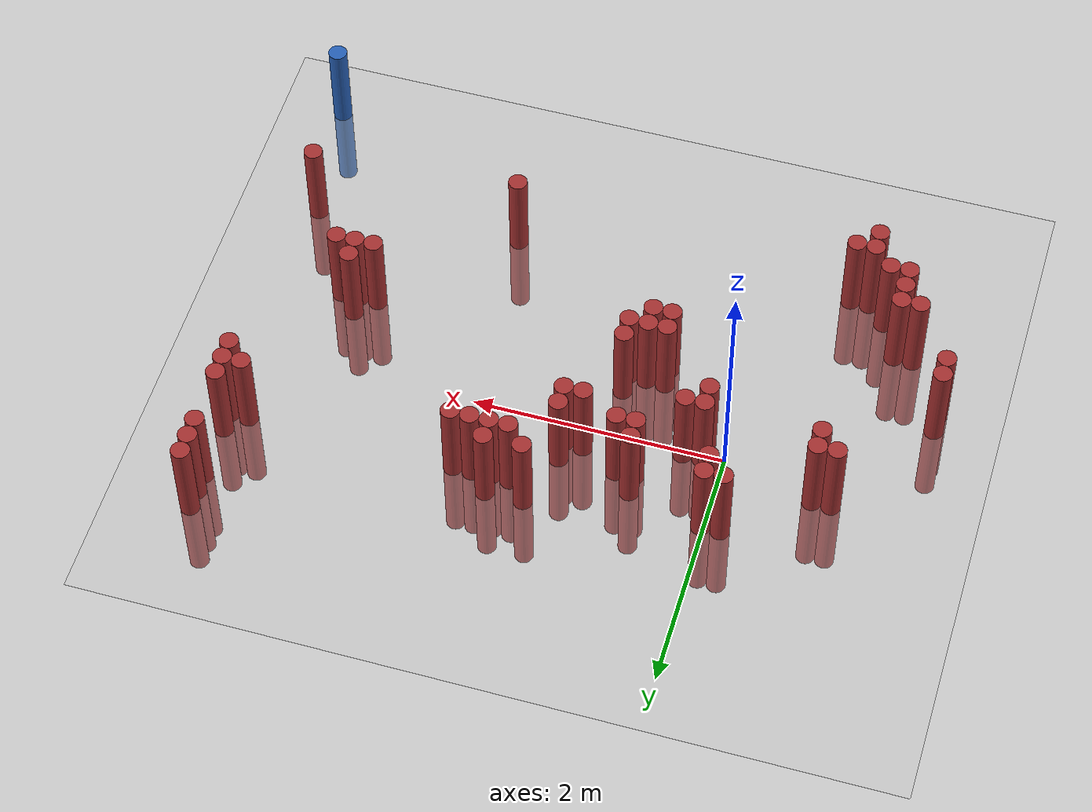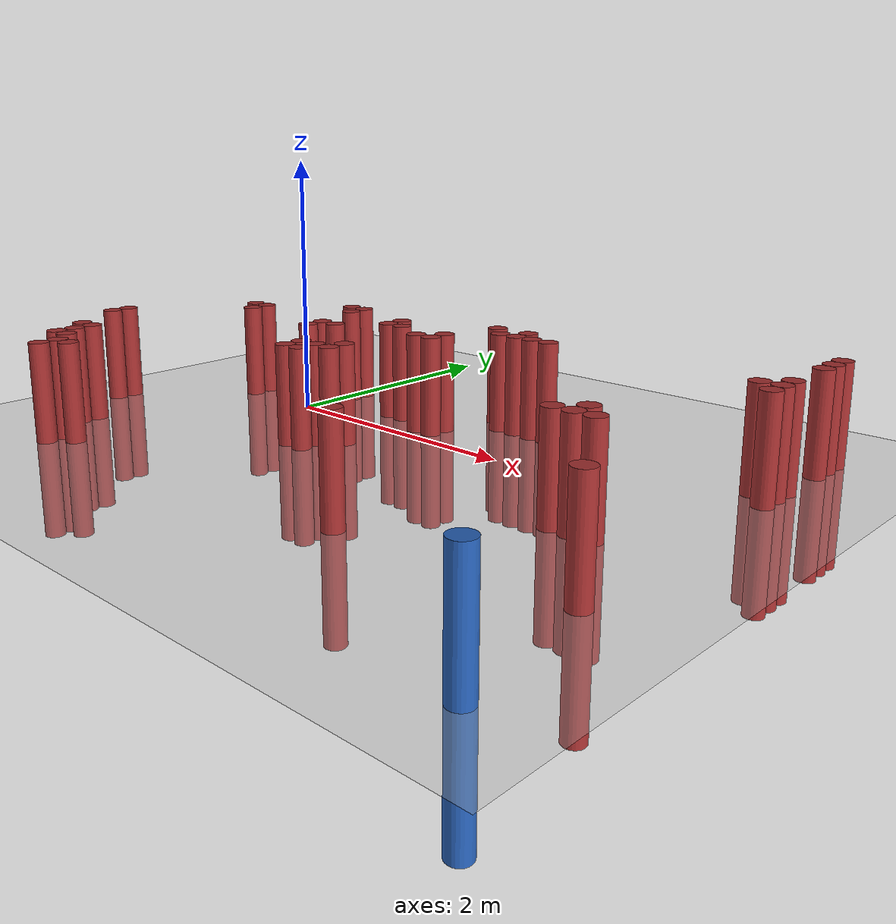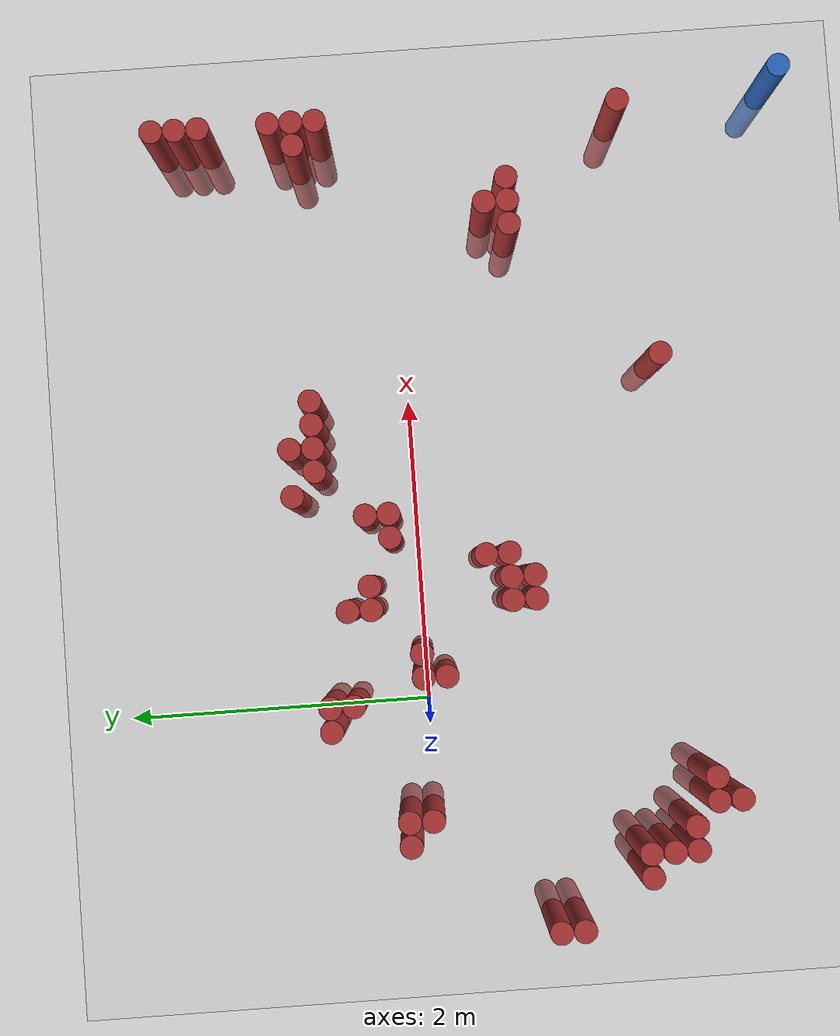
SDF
<sdf version="1.6">
 <world name="default">
  <model name="ground_plane">
   <static>1</static>
   <link name="link">
    <collision name="collision">
     <geometry><plane><normal>0 0 1</normal><size>100 100</size></plane></geometry>
     <surface><friction><ode><mu>100</mu><mu2>50</mu2></ode></friction></surface>
    </collision>
    <visual name="visual">
     <cast_shadows>0</cast_shadows>
     <geometry><plane><normal>0 0 1</normal><size>100 100</size></plane></geometry>
     <material>
      <script><uri>file://media/materials/scripts/gazebo.material</uri><name>Gazebo/Grey</name></script>
     </material>
    </visual>
   </link>
  </model>
  <model name="unit_cylinder_80">
   <static>1</static>
   <pose>3.925000 -2.525000 0.000000 0.000000 0.000000 0.000000</pose>
   <link name="link">
    <inertial>
     <mass>1</mass>
     <inertia><ixx>0.145833</ixx><ixy>0</ixy><ixz>0</ixz><iyy>0.145833</iyy><iyz>0</iyz><izz>0.125</izz></inertia>
    </inertial>
    <collision name="collision">
     <geometry><cylinder><radius>0.075000</radius><length>1.5</length></cylinder></geometry>
    </collision>
    <visual name="visual">
     <geometry><cylinder><radius>0.075000</radius><length>1.5</length></cylinder></geometry>
     <material>
      <ambient>0.152000 0.379000 0.720000 1</ambient>
      <diffuse>0.152000 0.379000 0.720000 1</diffuse>
     </material>
     <material>
      <script><name>Gazebo/Grey</name><uri>file://media/materials/scripts/gazebo.material</uri></script>
     </material>
    </visual>
   </link>
  </model>
  <model name="unit_cylinder_329">
   <static>1</static>
   <pose>-1.475000 -0.875000 0.000000 0.000000 0.000000 0.000000</pose>
   <link name="link">
    <inertial>
     <mass>1</mass>
     <inertia><ixx>0.145833</ixx><ixy>0</ixy><ixz>0</ixz><iyy>0.145833</iyy><iyz>0</iyz><izz>0.125</izz></inertia>
    </inertial>
    <collision name="collision">
     <geometry><cylinder><radius>0.075000</radius><length>1.5</length></cylinder></geometry>
    </collision>
    <visual name="visual">
     <geometry><cylinder><radius>0.075000</radius><length>1.5</length></cylinder></geometry>
     <material>
      <ambient>0.648000 0.192000 0.192000 1</ambient>
      <diffuse>0.648000 0.192000 0.192000 1</diffuse>
     </material>
     <material>
      <script><name>Gazebo/Grey</name><uri>file://media/materials/scripts/gazebo.material</uri></script>
     </material>
    </visual>
   </link>
  </model>
  <model name="unit_cylinder_330">
   <static>1</static>
   <pose>-1.475000 -0.725000 0.000000 0.000000 0.000000 0.000000</pose>
   <link name="link">
    <inertial>
     <mass>1</mass>
     <inertia><ixx>0.145833</ixx><ixy>0</ixy><ixz>0</ixz><iyy>0.145833</iyy><iyz>0</iyz><izz>0.125</izz></inertia>
    </inertial>
    <collision name="collision">
     <geometry><cylinder><radius>0.075000</radius><length>1.5</length></cylinder></geometry>
    </collision>
    <visual name="visual">
     <geometry><cylinder><radius>0.075000</radius><length>1.5</length></cylinder></geometry>
     <material>
      <ambient>0.648000 0.192000 0.192000 1</ambient>
      <diffuse>0.648000 0.192000 0.192000 1</diffuse>
     </material>
     <material>
      <script><name>Gazebo/Grey</name><uri>file://media/materials/scripts/gazebo.material</uri></script>
     </material>
    </visual>
   </link>
  </model>
  <model name="unit_cylinder_336">
   <static>1</static>
   <pose>-1.175000 -1.325000 0.000000 0.000000 0.000000 0.000000</pose>
   <link name="link">
    <inertial>
     <mass>1</mass>
     <inertia><ixx>0.145833</ixx><ixy>0</ixy><ixz>0</ixz><iyy>0.145833</iyy><iyz>0</iyz><izz>0.125</izz></inertia>
    </inertial>
    <collision name="collision">
     <geometry><cylinder><radius>0.075000</radius><length>1.5</length></cylinder></geometry>
    </collision>
    <visual name="visual">
     <geometry><cylinder><radius>0.075000</radius><length>1.5</length></cylinder></geometry>
     <material>
      <ambient>0.648000 0.192000 0.192000 1</ambient>
      <diffuse>0.648000 0.192000 0.192000 1</diffuse>
     </material>
     <material>
      <script><name>Gazebo/Grey</name><uri>file://media/materials/scripts/gazebo.material</uri></script>
     </material>
    </visual>
   </link>
  </model>
  <model name="unit_cylinder_337">
   <static>1</static>
   <pose>-1.025000 -1.625000 0.000000 0.000000 0.000000 0.000000</pose>
   <link name="link">
    <inertial>
     <mass>1</mass>
     <inertia><ixx>0.145833</ixx><ixy>0</ixy><ixz>0</ixz><iyy>0.145833</iyy><iyz>0</iyz><izz>0.125</izz></inertia>
    </inertial>
    <collision name="collision">
     <geometry><cylinder><radius>0.075000</radius><length>1.5</length></cylinder></geometry>
    </collision>
    <visual name="visual">
     <geometry><cylinder><radius>0.075000</radius><length>1.5</length></cylinder></geometry>
     <material>
      <ambient>0.648000 0.192000 0.192000 1</ambient>
      <diffuse>0.648000 0.192000 0.192000 1</diffuse>
     </material>
     <material>
      <script><name>Gazebo/Grey</name><uri>file://media/materials/scripts/gazebo.material</uri></script>
     </material>
    </visual>
   </link>
  </model>
  <model name="unit_cylinder_338">
   <static>1</static>
   <pose>-1.025000 -1.475000 0.000000 0.000000 0.000000 0.000000</pose>
   <link name="link">
    <inertial>
     <mass>1</mass>
     <inertia><ixx>0.145833</ixx><ixy>0</ixy><ixz>0</ixz><iyy>0.145833</iyy><iyz>0</iyz><izz>0.125</izz></inertia>
    </inertial>
    <collision name="collision">
     <geometry><cylinder><radius>0.075000</radius><length>1.5</length></cylinder></geometry>
    </collision>
    <visual name="visual">
     <geometry><cylinder><radius>0.075000</radius><length>1.5</length></cylinder></geometry>
     <material>
      <ambient>0.648000 0.192000 0.192000 1</ambient>
      <diffuse>0.648000 0.192000 0.192000 1</diffuse>
     </material>
     <material>
      <script><name>Gazebo/Grey</name><uri>file://media/materials/scripts/gazebo.material</uri></script>
     </material>
    </visual>
   </link>
  </model>
  <model name="unit_cylinder_339">
   <static>1</static>
   <pose>-1.025000 -1.325000 0.000000 0.000000 0.000000 0.000000</pose>
   <link name="link">
    <inertial>
     <mass>1</mass>
     <inertia><ixx>0.145833</ixx><ixy>0</ixy><ixz>0</ixz><iyy>0.145833</iyy><iyz>0</iyz><izz>0.125</izz></inertia>
    </inertial>
    <collision name="collision">
     <geometry><cylinder><radius>0.075000</radius><length>1.5</length></cylinder></geometry>
    </collision>
    <visual name="visual">
     <geometry><cylinder><radius>0.075000</radius><length>1.5</length></cylinder></geometry>
     <material>
      <ambient>0.648000 0.192000 0.192000 1</ambient>
      <diffuse>0.648000 0.192000 0.192000 1</diffuse>
     </material>
     <material>
      <script><name>Gazebo/Grey</name><uri>file://media/materials/scripts/gazebo.material</uri></script>
     </material>
    </visual>
   </link>
  </model>
  <model name="unit_cylinder_340">
   <static>1</static>
   <pose>-0.875000 -1.625000 0.000000 0.000000 0.000000 0.000000</pose>
   <link name="link">
    <inertial>
     <mass>1</mass>
     <inertia><ixx>0.145833</ixx><ixy>0</ixy><ixz>0</ixz><iyy>0.145833</iyy><iyz>0</iyz><izz>0.125</izz></inertia>
    </inertial>
    <collision name="collision">
     <geometry><cylinder><radius>0.075000</radius><length>1.5</length></cylinder></geometry>
    </collision>
    <visual name="visual">
     <geometry><cylinder><radius>0.075000</radius><length>1.5</length></cylinder></geometry>
     <material>
      <ambient>0.648000 0.192000 0.192000 1</ambient>
      <diffuse>0.648000 0.192000 0.192000 1</diffuse>
     </material>
     <material>
      <script><name>Gazebo/Grey</name><uri>file://media/materials/scripts/gazebo.material</uri></script>
     </material>
    </visual>
   </link>
  </model>
  <model name="unit_cylinder_341">
   <static>1</static>
   <pose>-0.875000 0.175000 0.000000 0.000000 0.000000 0.000000</pose>
   <link name="link">
    <inertial>
     <mass>1</mass>
     <inertia><ixx>0.145833</ixx><ixy>0</ixy><ixz>0</ixz><iyy>0.145833</iyy><iyz>0</iyz><izz>0.125</izz></inertia>
    </inertial>
    <collision name="collision">
     <geometry><cylinder><radius>0.075000</radius><length>1.5</length></cylinder></geometry>
    </collision>
    <visual name="visual">
     <geometry><cylinder><radius>0.075000</radius><length>1.5</length></cylinder></geometry>
     <material>
      <ambient>0.648000 0.192000 0.192000 1</ambient>
      <diffuse>0.648000 0.192000 0.192000 1</diffuse>
     </material>
     <material>
      <script><name>Gazebo/Grey</name><uri>file://media/materials/scripts/gazebo.material</uri></script>
     </material>
    </visual>
   </link>
  </model>
  <model name="unit_cylinder_342">
   <static>1</static>
   <pose>-0.725000 -1.925000 0.000000 0.000000 0.000000 0.000000</pose>
   <link name="link">
    <inertial>
     <mass>1</mass>
     <inertia><ixx>0.145833</ixx><ixy>0</ixy><ixz>0</ixz><iyy>0.145833</iyy><iyz>0</iyz><izz>0.125</izz></inertia>
    </inertial>
    <collision name="collision">
     <geometry><cylinder><radius>0.075000</radius><length>1.5</length></cylinder></geometry>
    </collision>
    <visual name="visual">
     <geometry><cylinder><radius>0.075000</radius><length>1.5</length></cylinder></geometry>
     <material>
      <ambient>0.648000 0.192000 0.192000 1</ambient>
      <diffuse>0.648000 0.192000 0.192000 1</diffuse>
     </material>
     <material>
      <script><name>Gazebo/Grey</name><uri>file://media/materials/scripts/gazebo.material</uri></script>
     </material>
    </visual>
   </link>
  </model>
  <model name="unit_cylinder_343">
   <static>1</static>
   <pose>-0.725000 -1.775000 0.000000 0.000000 0.000000 0.000000</pose>
   <link name="link">
    <inertial>
     <mass>1</mass>
     <inertia><ixx>0.145833</ixx><ixy>0</ixy><ixz>0</ixz><iyy>0.145833</iyy><iyz>0</iyz><izz>0.125</izz></inertia>
    </inertial>
    <collision name="collision">
     <geometry><cylinder><radius>0.075000</radius><length>1.5</length></cylinder></geometry>
    </collision>
    <visual name="visual">
     <geometry><cylinder><radius>0.075000</radius><length>1.5</length></cylinder></geometry>
     <material>
      <ambient>0.648000 0.192000 0.192000 1</ambient>
      <diffuse>0.648000 0.192000 0.192000 1</diffuse>
     </material>
     <material>
      <script><name>Gazebo/Grey</name><uri>file://media/materials/scripts/gazebo.material</uri></script>
     </material>
    </visual>
   </link>
  </model>
  <model name="unit_cylinder_344">
   <static>1</static>
   <pose>-0.725000 0.025000 0.000000 0.000000 0.000000 0.000000</pose>
   <link name="link">
    <inertial>
     <mass>1</mass>
     <inertia><ixx>0.145833</ixx><ixy>0</ixy><ixz>0</ixz><iyy>0.145833</iyy><iyz>0</iyz><izz>0.125</izz></inertia>
    </inertial>
    <collision name="collision">
     <geometry><cylinder><radius>0.075000</radius><length>1.5</length></cylinder></geometry>
    </collision>
    <visual name="visual">
     <geometry><cylinder><radius>0.075000</radius><length>1.5</length></cylinder></geometry>
     <material>
      <ambient>0.648000 0.192000 0.192000 1</ambient>
      <diffuse>0.648000 0.192000 0.192000 1</diffuse>
     </material>
     <material>
      <script><name>Gazebo/Grey</name><uri>file://media/materials/scripts/gazebo.material</uri></script>
     </material>
    </visual>
   </link>
  </model>
  <model name="unit_cylinder_345">
   <static>1</static>
   <pose>-0.725000 0.175000 0.000000 0.000000 0.000000 0.000000</pose>
   <link name="link">
    <inertial>
     <mass>1</mass>
     <inertia><ixx>0.145833</ixx><ixy>0</ixy><ixz>0</ixz><iyy>0.145833</iyy><iyz>0</iyz><izz>0.125</izz></inertia>
    </inertial>
    <collision name="collision">
     <geometry><cylinder><radius>0.075000</radius><length>1.5</length></cylinder></geometry>
    </collision>
    <visual name="visual">
     <geometry><cylinder><radius>0.075000</radius><length>1.5</length></cylinder></geometry>
     <material>
      <ambient>0.648000 0.192000 0.192000 1</ambient>
      <diffuse>0.648000 0.192000 0.192000 1</diffuse>
     </material>
     <material>
      <script><name>Gazebo/Grey</name><uri>file://media/materials/scripts/gazebo.material</uri></script>
     </material>
    </visual>
   </link>
  </model>
  <model name="unit_cylinder_346">
   <static>1</static>
   <pose>-0.575000 -1.775000 0.000000 0.000000 0.000000 0.000000</pose>
   <link name="link">
    <inertial>
     <mass>1</mass>
     <inertia><ixx>0.145833</ixx><ixy>0</ixy><ixz>0</ixz><iyy>0.145833</iyy><iyz>0</iyz><izz>0.125</izz></inertia>
    </inertial>
    <collision name="collision">
     <geometry><cylinder><radius>0.075000</radius><length>1.5</length></cylinder></geometry>
    </collision>
    <visual name="visual">
     <geometry><cylinder><radius>0.075000</radius><length>1.5</length></cylinder></geometry>
     <material>
      <ambient>0.648000 0.192000 0.192000 1</ambient>
      <diffuse>0.648000 0.192000 0.192000 1</diffuse>
     </material>
     <material>
      <script><name>Gazebo/Grey</name><uri>file://media/materials/scripts/gazebo.material</uri></script>
     </material>
    </visual>
   </link>
  </model>
  <model name="unit_cylinder_356">
   <static>1</static>
   <pose>-0.125000 0.625000 0.000000 0.000000 0.000000 0.000000</pose>
   <link name="link">
    <inertial>
     <mass>1</mass>
     <inertia><ixx>0.145833</ixx><ixy>0</ixy><ixz>0</ixz><iyy>0.145833</iyy><iyz>0</iyz><izz>0.125</izz></inertia>
    </inertial>
    <collision name="collision">
     <geometry><cylinder><radius>0.075000</radius><length>1.5</length></cylinder></geometry>
    </collision>
    <visual name="visual">
     <geometry><cylinder><radius>0.075000</radius><length>1.5</length></cylinder></geometry>
     <material>
      <ambient>0.648000 0.192000 0.192000 1</ambient>
      <diffuse>0.648000 0.192000 0.192000 1</diffuse>
     </material>
     <material>
      <script><name>Gazebo/Grey</name><uri>file://media/materials/scripts/gazebo.material</uri></script>
     </material>
    </visual>
   </link>
  </model>
  <model name="unit_cylinder_361">
   <static>1</static>
   <pose>0.025000 0.475000 0.000000 0.000000 0.000000 0.000000</pose>
   <link name="link">
    <inertial>
     <mass>1</mass>
     <inertia><ixx>0.145833</ixx><ixy>0</ixy><ixz>0</ixz><iyy>0.145833</iyy><iyz>0</iyz><izz>0.125</izz></inertia>
    </inertial>
    <collision name="collision">
     <geometry><cylinder><radius>0.075000</radius><length>1.5</length></cylinder></geometry>
    </collision>
    <visual name="visual">
     <geometry><cylinder><radius>0.075000</radius><length>1.5</length></cylinder></geometry>
     <material>
      <ambient>0.648000 0.192000 0.192000 1</ambient>
      <diffuse>0.648000 0.192000 0.192000 1</diffuse>
     </material>
     <material>
      <script><name>Gazebo/Grey</name><uri>file://media/materials/scripts/gazebo.material</uri></script>
     </material>
    </visual>
   </link>
  </model>
  <model name="unit_cylinder_362">
   <static>1</static>
   <pose>0.025000 0.625000 0.000000 0.000000 0.000000 0.000000</pose>
   <link name="link">
    <inertial>
     <mass>1</mass>
     <inertia><ixx>0.145833</ixx><ixy>0</ixy><ixz>0</ixz><iyy>0.145833</iyy><iyz>0</iyz><izz>0.125</izz></inertia>
    </inertial>
    <collision name="collision">
     <geometry><cylinder><radius>0.075000</radius><length>1.5</length></cylinder></geometry>
    </collision>
    <visual name="visual">
     <geometry><cylinder><radius>0.075000</radius><length>1.5</length></cylinder></geometry>
     <material>
      <ambient>0.648000 0.192000 0.192000 1</ambient>
      <diffuse>0.648000 0.192000 0.192000 1</diffuse>
     </material>
     <material>
      <script><name>Gazebo/Grey</name><uri>file://media/materials/scripts/gazebo.material</uri></script>
     </material>
    </visual>
   </link>
  </model>
  <model name="unit_cylinder_367">
   <static>1</static>
   <pose>0.175000 -0.125000 0.000000 0.000000 0.000000 0.000000</pose>
   <link name="link">
    <inertial>
     <mass>1</mass>
     <inertia><ixx>0.145833</ixx><ixy>0</ixy><ixz>0</ixz><iyy>0.145833</iyy><iyz>0</iyz><izz>0.125</izz></inertia>
    </inertial>
    <collision name="collision">
     <geometry><cylinder><radius>0.075000</radius><length>1.5</length></cylinder></geometry>
    </collision>
    <visual name="visual">
     <geometry><cylinder><radius>0.075000</radius><length>1.5</length></cylinder></geometry>
     <material>
      <ambient>0.648000 0.192000 0.192000 1</ambient>
      <diffuse>0.648000 0.192000 0.192000 1</diffuse>
     </material>
     <material>
      <script><name>Gazebo/Grey</name><uri>file://media/materials/scripts/gazebo.material</uri></script>
     </material>
    </visual>
   </link>
  </model>
  <model name="unit_cylinder_368">
   <static>1</static>
   <pose>0.175000 0.025000 0.000000 0.000000 0.000000 0.000000</pose>
   <link name="link">
    <inertial>
     <mass>1</mass>
     <inertia><ixx>0.145833</ixx><ixy>0</ixy><ixz>0</ixz><iyy>0.145833</iyy><iyz>0</iyz><izz>0.125</izz></inertia>
    </inertial>
    <collision name="collision">
     <geometry><cylinder><radius>0.075000</radius><length>1.5</length></cylinder></geometry>
    </collision>
    <visual name="visual">
     <geometry><cylinder><radius>0.075000</radius><length>1.5</length></cylinder></geometry>
     <material>
      <ambient>0.648000 0.192000 0.192000 1</ambient>
      <diffuse>0.648000 0.192000 0.192000 1</diffuse>
     </material>
     <material>
      <script><name>Gazebo/Grey</name><uri>file://media/materials/scripts/gazebo.material</uri></script>
     </material>
    </visual>
   </link>
  </model>
  <model name="unit_cylinder_373">
   <static>1</static>
   <pose>0.325000 0.025000 0.000000 0.000000 0.000000 0.000000</pose>
   <link name="link">
    <inertial>
     <mass>1</mass>
     <inertia><ixx>0.145833</ixx><ixy>0</ixy><ixz>0</ixz><iyy>0.145833</iyy><iyz>0</iyz><izz>0.125</izz></inertia>
    </inertial>
    <collision name="collision">
     <geometry><cylinder><radius>0.075000</radius><length>1.5</length></cylinder></geometry>
    </collision>
    <visual name="visual">
     <geometry><cylinder><radius>0.075000</radius><length>1.5</length></cylinder></geometry>
     <material>
      <ambient>0.648000 0.192000 0.192000 1</ambient>
      <diffuse>0.648000 0.192000 0.192000 1</diffuse>
     </material>
     <material>
      <script><name>Gazebo/Grey</name><uri>file://media/materials/scripts/gazebo.material</uri></script>
     </material>
    </visual>
   </link>
  </model>
  <model name="unit_cylinder_379">
   <static>1</static>
   <pose>0.625000 -0.725000 0.000000 0.000000 0.000000 0.000000</pose>
   <link name="link">
    <inertial>
     <mass>1</mass>
     <inertia><ixx>0.145833</ixx><ixy>0</ixy><ixz>0</ixz><iyy>0.145833</iyy><iyz>0</iyz><izz>0.125</izz></inertia>
    </inertial>
    <collision name="collision">
     <geometry><cylinder><radius>0.075000</radius><length>1.5</length></cylinder></geometry>
    </collision>
    <visual name="visual">
     <geometry><cylinder><radius>0.075000</radius><length>1.5</length></cylinder></geometry>
     <material>
      <ambient>0.648000 0.192000 0.192000 1</ambient>
      <diffuse>0.648000 0.192000 0.192000 1</diffuse>
     </material>
     <material>
      <script><name>Gazebo/Grey</name><uri>file://media/materials/scripts/gazebo.material</uri></script>
     </material>
    </visual>
   </link>
  </model>
  <model name="unit_cylinder_380">
   <static>1</static>
   <pose>0.625000 -0.575000 0.000000 0.000000 0.000000 0.000000</pose>
   <link name="link">
    <inertial>
     <mass>1</mass>
     <inertia><ixx>0.145833</ixx><ixy>0</ixy><ixz>0</ixz><iyy>0.145833</iyy><iyz>0</iyz><izz>0.125</izz></inertia>
    </inertial>
    <collision name="collision">
     <geometry><cylinder><radius>0.075000</radius><length>1.5</length></cylinder></geometry>
    </collision>
    <visual name="visual">
     <geometry><cylinder><radius>0.075000</radius><length>1.5</length></cylinder></geometry>
     <material>
      <ambient>0.648000 0.192000 0.192000 1</ambient>
      <diffuse>0.648000 0.192000 0.192000 1</diffuse>
     </material>
     <material>
      <script><name>Gazebo/Grey</name><uri>file://media/materials/scripts/gazebo.material</uri></script>
     </material>
    </visual>
   </link>
  </model>
  <model name="unit_cylinder_381">
   <static>1</static>
   <pose>0.625000 0.325000 0.000000 0.000000 0.000000 0.000000</pose>
   <link name="link">
    <inertial>
     <mass>1</mass>
     <inertia><ixx>0.145833</ixx><ixy>0</ixy><ixz>0</ixz><iyy>0.145833</iyy><iyz>0</iyz><izz>0.125</izz></inertia>
    </inertial>
    <collision name="collision">
     <geometry><cylinder><radius>0.075000</radius><length>1.5</length></cylinder></geometry>
    </collision>
    <visual name="visual">
     <geometry><cylinder><radius>0.075000</radius><length>1.5</length></cylinder></geometry>
     <material>
      <ambient>0.648000 0.192000 0.192000 1</ambient>
      <diffuse>0.648000 0.192000 0.192000 1</diffuse>
     </material>
     <material>
      <script><name>Gazebo/Grey</name><uri>file://media/materials/scripts/gazebo.material</uri></script>
     </material>
    </visual>
   </link>
  </model>
  <model name="unit_cylinder_382">
   <static>1</static>
   <pose>0.625000 0.475000 0.000000 0.000000 0.000000 0.000000</pose>
   <link name="link">
    <inertial>
     <mass>1</mass>
     <inertia><ixx>0.145833</ixx><ixy>0</ixy><ixz>0</ixz><iyy>0.145833</iyy><iyz>0</iyz><izz>0.125</izz></inertia>
    </inertial>
    <collision name="collision">
     <geometry><cylinder><radius>0.075000</radius><length>1.5</length></cylinder></geometry>
    </collision>
    <visual name="visual">
     <geometry><cylinder><radius>0.075000</radius><length>1.5</length></cylinder></geometry>
     <material>
      <ambient>0.648000 0.192000 0.192000 1</ambient>
      <diffuse>0.648000 0.192000 0.192000 1</diffuse>
     </material>
     <material>
      <script><name>Gazebo/Grey</name><uri>file://media/materials/scripts/gazebo.material</uri></script>
     </material>
    </visual>
   </link>
  </model>
  <model name="unit_cylinder_384">
   <static>1</static>
   <pose>0.775000 -0.725000 0.000000 0.000000 0.000000 0.000000</pose>
   <link name="link">
    <inertial>
     <mass>1</mass>
     <inertia><ixx>0.145833</ixx><ixy>0</ixy><ixz>0</ixz><iyy>0.145833</iyy><iyz>0</iyz><izz>0.125</izz></inertia>
    </inertial>
    <collision name="collision">
     <geometry><cylinder><radius>0.075000</radius><length>1.5</length></cylinder></geometry>
    </collision>
    <visual name="visual">
     <geometry><cylinder><radius>0.075000</radius><length>1.5</length></cylinder></geometry>
     <material>
      <ambient>0.648000 0.192000 0.192000 1</ambient>
      <diffuse>0.648000 0.192000 0.192000 1</diffuse>
     </material>
     <material>
      <script><name>Gazebo/Grey</name><uri>file://media/materials/scripts/gazebo.material</uri></script>
     </material>
    </visual>
   </link>
  </model>
  <model name="unit_cylinder_385">
   <static>1</static>
   <pose>0.775000 -0.575000 0.000000 0.000000 0.000000 0.000000</pose>
   <link name="link">
    <inertial>
     <mass>1</mass>
     <inertia><ixx>0.145833</ixx><ixy>0</ixy><ixz>0</ixz><iyy>0.145833</iyy><iyz>0</iyz><izz>0.125</izz></inertia>
    </inertial>
    <collision name="collision">
     <geometry><cylinder><radius>0.075000</radius><length>1.5</length></cylinder></geometry>
    </collision>
    <visual name="visual">
     <geometry><cylinder><radius>0.075000</radius><length>1.5</length></cylinder></geometry>
     <material>
      <ambient>0.648000 0.192000 0.192000 1</ambient>
      <diffuse>0.648000 0.192000 0.192000 1</diffuse>
     </material>
     <material>
      <script><name>Gazebo/Grey</name><uri>file://media/materials/scripts/gazebo.material</uri></script>
     </material>
    </visual>
   </link>
  </model>
  <model name="unit_cylinder_386">
   <static>1</static>
   <pose>0.775000 0.325000 0.000000 0.000000 0.000000 0.000000</pose>
   <link name="link">
    <inertial>
     <mass>1</mass>
     <inertia><ixx>0.145833</ixx><ixy>0</ixy><ixz>0</ixz><iyy>0.145833</iyy><iyz>0</iyz><izz>0.125</izz></inertia>
    </inertial>
    <collision name="collision">
     <geometry><cylinder><radius>0.075000</radius><length>1.5</length></cylinder></geometry>
    </collision>
    <visual name="visual">
     <geometry><cylinder><radius>0.075000</radius><length>1.5</length></cylinder></geometry>
     <material>
      <ambient>0.648000 0.192000 0.192000 1</ambient>
      <diffuse>0.648000 0.192000 0.192000 1</diffuse>
     </material>
     <material>
      <script><name>Gazebo/Grey</name><uri>file://media/materials/scripts/gazebo.material</uri></script>
     </material>
    </visual>
   </link>
  </model>
  <model name="unit_cylinder_389">
   <static>1</static>
   <pose>0.925000 -0.575000 0.000000 0.000000 0.000000 0.000000</pose>
   <link name="link">
    <inertial>
     <mass>1</mass>
     <inertia><ixx>0.145833</ixx><ixy>0</ixy><ixz>0</ixz><iyy>0.145833</iyy><iyz>0</iyz><izz>0.125</izz></inertia>
    </inertial>
    <collision name="collision">
     <geometry><cylinder><radius>0.075000</radius><length>1.5</length></cylinder></geometry>
    </collision>
    <visual name="visual">
     <geometry><cylinder><radius>0.075000</radius><length>1.5</length></cylinder></geometry>
     <material>
      <ambient>0.648000 0.192000 0.192000 1</ambient>
      <diffuse>0.648000 0.192000 0.192000 1</diffuse>
     </material>
     <material>
      <script><name>Gazebo/Grey</name><uri>file://media/materials/scripts/gazebo.material</uri></script>
     </material>
    </visual>
   </link>
  </model>
  <model name="unit_cylinder_390">
   <static>1</static>
   <pose>0.925000 -0.425000 0.000000 0.000000 0.000000 0.000000</pose>
   <link name="link">
    <inertial>
     <mass>1</mass>
     <inertia><ixx>0.145833</ixx><ixy>0</ixy><ixz>0</ixz><iyy>0.145833</iyy><iyz>0</iyz><izz>0.125</izz></inertia>
    </inertial>
    <collision name="collision">
     <geometry><cylinder><radius>0.075000</radius><length>1.5</length></cylinder></geometry>
    </collision>
    <visual name="visual">
     <geometry><cylinder><radius>0.075000</radius><length>1.5</length></cylinder></geometry>
     <material>
      <ambient>0.648000 0.192000 0.192000 1</ambient>
      <diffuse>0.648000 0.192000 0.192000 1</diffuse>
     </material>
     <material>
      <script><name>Gazebo/Grey</name><uri>file://media/materials/scripts/gazebo.material</uri></script>
     </material>
    </visual>
   </link>
  </model>
  <model name="unit_cylinder_391">
   <static>1</static>
   <pose>1.075000 0.175000 0.000000 0.000000 0.000000 0.000000</pose>
   <link name="link">
    <inertial>
     <mass>1</mass>
     <inertia><ixx>0.145833</ixx><ixy>0</ixy><ixz>0</ixz><iyy>0.145833</iyy><iyz>0</iyz><izz>0.125</izz></inertia>
    </inertial>
    <collision name="collision">
     <geometry><cylinder><radius>0.075000</radius><length>1.5</length></cylinder></geometry>
    </collision>
    <visual name="visual">
     <geometry><cylinder><radius>0.075000</radius><length>1.5</length></cylinder></geometry>
     <material>
      <ambient>0.648000 0.192000 0.192000 1</ambient>
      <diffuse>0.648000 0.192000 0.192000 1</diffuse>
     </material>
     <material>
      <script><name>Gazebo/Grey</name><uri>file://media/materials/scripts/gazebo.material</uri></script>
     </material>
    </visual>
   </link>
  </model>
  <model name="unit_cylinder_392">
   <static>1</static>
   <pose>1.225000 0.175000 0.000000 0.000000 0.000000 0.000000</pose>
   <link name="link">
    <inertial>
     <mass>1</mass>
     <inertia><ixx>0.145833</ixx><ixy>0</ixy><ixz>0</ixz><iyy>0.145833</iyy><iyz>0</iyz><izz>0.125</izz></inertia>
    </inertial>
    <collision name="collision">
     <geometry><cylinder><radius>0.075000</radius><length>1.5</length></cylinder></geometry>
    </collision>
    <visual name="visual">
     <geometry><cylinder><radius>0.075000</radius><length>1.5</length></cylinder></geometry>
     <material>
      <ambient>0.648000 0.192000 0.192000 1</ambient>
      <diffuse>0.648000 0.192000 0.192000 1</diffuse>
     </material>
     <material>
      <script><name>Gazebo/Grey</name><uri>file://media/materials/scripts/gazebo.material</uri></script>
     </material>
    </visual>
   </link>
  </model>
  <model name="unit_cylinder_393">
   <static>1</static>
   <pose>1.225000 0.325000 0.000000 0.000000 0.000000 0.000000</pose>
   <link name="link">
    <inertial>
     <mass>1</mass>
     <inertia><ixx>0.145833</ixx><ixy>0</ixy><ixz>0</ixz><iyy>0.145833</iyy><iyz>0</iyz><izz>0.125</izz></inertia>
    </inertial>
    <collision name="collision">
     <geometry><cylinder><radius>0.075000</radius><length>1.5</length></cylinder></geometry>
    </collision>
    <visual name="visual">
     <geometry><cylinder><radius>0.075000</radius><length>1.5</length></cylinder></geometry>
     <material>
      <ambient>0.648000 0.192000 0.192000 1</ambient>
      <diffuse>0.648000 0.192000 0.192000 1</diffuse>
     </material>
     <material>
      <script><name>Gazebo/Grey</name><uri>file://media/materials/scripts/gazebo.material</uri></script>
     </material>
    </visual>
   </link>
  </model>
  <model name="unit_cylinder_394">
   <static>1</static>
   <pose>1.375000 0.775000 0.000000 0.000000 0.000000 0.000000</pose>
   <link name="link">
    <inertial>
     <mass>1</mass>
     <inertia><ixx>0.145833</ixx><ixy>0</ixy><ixz>0</ixz><iyy>0.145833</iyy><iyz>0</iyz><izz>0.125</izz></inertia>
    </inertial>
    <collision name="collision">
     <geometry><cylinder><radius>0.075000</radius><length>1.5</length></cylinder></geometry>
    </collision>
    <visual name="visual">
     <geometry><cylinder><radius>0.075000</radius><length>1.5</length></cylinder></geometry>
     <material>
      <ambient>0.648000 0.192000 0.192000 1</ambient>
      <diffuse>0.648000 0.192000 0.192000 1</diffuse>
     </material>
     <material>
      <script><name>Gazebo/Grey</name><uri>file://media/materials/scripts/gazebo.material</uri></script>
     </material>
    </visual>
   </link>
  </model>
  <model name="unit_cylinder_395">
   <static>1</static>
   <pose>1.525000 0.625000 0.000000 0.000000 0.000000 0.000000</pose>
   <link name="link">
    <inertial>
     <mass>1</mass>
     <inertia><ixx>0.145833</ixx><ixy>0</ixy><ixz>0</ixz><iyy>0.145833</iyy><iyz>0</iyz><izz>0.125</izz></inertia>
    </inertial>
    <collision name="collision">
     <geometry><cylinder><radius>0.075000</radius><length>1.5</length></cylinder></geometry>
    </collision>
    <visual name="visual">
     <geometry><cylinder><radius>0.075000</radius><length>1.5</length></cylinder></geometry>
     <material>
      <ambient>0.648000 0.192000 0.192000 1</ambient>
      <diffuse>0.648000 0.192000 0.192000 1</diffuse>
     </material>
     <material>
      <script><name>Gazebo/Grey</name><uri>file://media/materials/scripts/gazebo.material</uri></script>
     </material>
    </visual>
   </link>
  </model>
  <model name="unit_cylinder_396">
   <static>1</static>
   <pose>1.675000 0.625000 0.000000 0.000000 0.000000 0.000000</pose>
   <link name="link">
    <inertial>
     <mass>1</mass>
     <inertia><ixx>0.145833</ixx><ixy>0</ixy><ixz>0</ixz><iyy>0.145833</iyy><iyz>0</iyz><izz>0.125</izz></inertia>
    </inertial>
    <collision name="collision">
     <geometry><cylinder><radius>0.075000</radius><length>1.5</length></cylinder></geometry>
    </collision>
    <visual name="visual">
     <geometry><cylinder><radius>0.075000</radius><length>1.5</length></cylinder></geometry>
     <material>
      <ambient>0.648000 0.192000 0.192000 1</ambient>
      <diffuse>0.648000 0.192000 0.192000 1</diffuse>
     </material>
     <material>
      <script><name>Gazebo/Grey</name><uri>file://media/materials/scripts/gazebo.material</uri></script>
     </material>
    </visual>
   </link>
  </model>
  <model name="unit_cylinder_397">
   <static>1</static>
   <pose>1.675000 0.775000 0.000000 0.000000 0.000000 0.000000</pose>
   <link name="link">
    <inertial>
     <mass>1</mass>
     <inertia><ixx>0.145833</ixx><ixy>0</ixy><ixz>0</ixz><iyy>0.145833</iyy><iyz>0</iyz><izz>0.125</izz></inertia>
    </inertial>
    <collision name="collision">
     <geometry><cylinder><radius>0.075000</radius><length>1.5</length></cylinder></geometry>
    </collision>
    <visual name="visual">
     <geometry><cylinder><radius>0.075000</radius><length>1.5</length></cylinder></geometry>
     <material>
      <ambient>0.648000 0.192000 0.192000 1</ambient>
      <diffuse>0.648000 0.192000 0.192000 1</diffuse>
     </material>
     <material>
      <script><name>Gazebo/Grey</name><uri>file://media/materials/scripts/gazebo.material</uri></script>
     </material>
    </visual>
   </link>
  </model>
  <model name="unit_cylinder_398">
   <static>1</static>
   <pose>1.825000 0.625000 0.000000 0.000000 0.000000 0.000000</pose>
   <link name="link">
    <inertial>
     <mass>1</mass>
     <inertia><ixx>0.145833</ixx><ixy>0</ixy><ixz>0</ixz><iyy>0.145833</iyy><iyz>0</iyz><izz>0.125</izz></inertia>
    </inertial>
    <collision name="collision">
     <geometry><cylinder><radius>0.075000</radius><length>1.5</length></cylinder></geometry>
    </collision>
    <visual name="visual">
     <geometry><cylinder><radius>0.075000</radius><length>1.5</length></cylinder></geometry>
     <material>
      <ambient>0.648000 0.192000 0.192000 1</ambient>
      <diffuse>0.648000 0.192000 0.192000 1</diffuse>
     </material>
     <material>
      <script><name>Gazebo/Grey</name><uri>file://media/materials/scripts/gazebo.material</uri></script>
     </material>
    </visual>
   </link>
  </model>
  <model name="unit_cylinder_401">
   <static>1</static>
   <pose>1.975000 0.625000 0.000000 0.000000 0.000000 0.000000</pose>
   <link name="link">
    <inertial>
     <mass>1</mass>
     <inertia><ixx>0.145833</ixx><ixy>0</ixy><ixz>0</ixz><iyy>0.145833</iyy><iyz>0</iyz><izz>0.125</izz></inertia>
    </inertial>
    <collision name="collision">
     <geometry><cylinder><radius>0.075000</radius><length>1.5</length></cylinder></geometry>
    </collision>
    <visual name="visual">
     <geometry><cylinder><radius>0.075000</radius><length>1.5</length></cylinder></geometry>
     <material>
      <ambient>0.648000 0.192000 0.192000 1</ambient>
      <diffuse>0.648000 0.192000 0.192000 1</diffuse>
     </material>
     <material>
      <script><name>Gazebo/Grey</name><uri>file://media/materials/scripts/gazebo.material</uri></script>
     </material>
    </visual>
   </link>
  </model>
  <model name="unit_cylinder_404">
   <static>1</static>
   <pose>2.125000 -1.625000 0.000000 0.000000 0.000000 0.000000</pose>
   <link name="link">
    <inertial>
     <mass>1</mass>
     <inertia><ixx>0.145833</ixx><ixy>0</ixy><ixz>0</ixz><iyy>0.145833</iyy><iyz>0</iyz><izz>0.125</izz></inertia>
    </inertial>
    <collision name="collision">
     <geometry><cylinder><radius>0.075000</radius><length>1.5</length></cylinder></geometry>
    </collision>
    <visual name="visual">
     <geometry><cylinder><radius>0.075000</radius><length>1.5</length></cylinder></geometry>
     <material>
      <ambient>0.648000 0.192000 0.192000 1</ambient>
      <diffuse>0.648000 0.192000 0.192000 1</diffuse>
     </material>
     <material>
      <script><name>Gazebo/Grey</name><uri>file://media/materials/scripts/gazebo.material</uri></script>
     </material>
    </visual>
   </link>
  </model>
  <model name="unit_cylinder_423">
   <static>1</static>
   <pose>3.025000 -0.725000 0.000000 0.000000 0.000000 0.000000</pose>
   <link name="link">
    <inertial>
     <mass>1</mass>
     <inertia><ixx>0.145833</ixx><ixy>0</ixy><ixz>0</ixz><iyy>0.145833</iyy><iyz>0</iyz><izz>0.125</izz></inertia>
    </inertial>
    <collision name="collision">
     <geometry><cylinder><radius>0.075000</radius><length>1.5</length></cylinder></geometry>
    </collision>
    <visual name="visual">
     <geometry><cylinder><radius>0.075000</radius><length>1.5</length></cylinder></geometry>
     <material>
      <ambient>0.648000 0.192000 0.192000 1</ambient>
      <diffuse>0.648000 0.192000 0.192000 1</diffuse>
     </material>
     <material>
      <script><name>Gazebo/Grey</name><uri>file://media/materials/scripts/gazebo.material</uri></script>
     </material>
    </visual>
   </link>
  </model>
  <model name="unit_cylinder_428">
   <static>1</static>
   <pose>3.175000 -0.725000 0.000000 0.000000 0.000000 0.000000</pose>
   <link name="link">
    <inertial>
     <mass>1</mass>
     <inertia><ixx>0.145833</ixx><ixy>0</ixy><ixz>0</ixz><iyy>0.145833</iyy><iyz>0</iyz><izz>0.125</izz></inertia>
    </inertial>
    <collision name="collision">
     <geometry><cylinder><radius>0.075000</radius><length>1.5</length></cylinder></geometry>
    </collision>
    <visual name="visual">
     <geometry><cylinder><radius>0.075000</radius><length>1.5</length></cylinder></geometry>
     <material>
      <ambient>0.648000 0.192000 0.192000 1</ambient>
      <diffuse>0.648000 0.192000 0.192000 1</diffuse>
     </material>
     <material>
      <script><name>Gazebo/Grey</name><uri>file://media/materials/scripts/gazebo.material</uri></script>
     </material>
    </visual>
   </link>
  </model>
  <model name="unit_cylinder_429">
   <static>1</static>
   <pose>3.175000 -0.575000 0.000000 0.000000 0.000000 0.000000</pose>
   <link name="link">
    <inertial>
     <mass>1</mass>
     <inertia><ixx>0.145833</ixx><ixy>0</ixy><ixz>0</ixz><iyy>0.145833</iyy><iyz>0</iyz><izz>0.125</izz></inertia>
    </inertial>
    <collision name="collision">
     <geometry><cylinder><radius>0.075000</radius><length>1.5</length></cylinder></geometry>
    </collision>
    <visual name="visual">
     <geometry><cylinder><radius>0.075000</radius><length>1.5</length></cylinder></geometry>
     <material>
      <ambient>0.648000 0.192000 0.192000 1</ambient>
      <diffuse>0.648000 0.192000 0.192000 1</diffuse>
     </material>
     <material>
      <script><name>Gazebo/Grey</name><uri>file://media/materials/scripts/gazebo.material</uri></script>
     </material>
    </visual>
   </link>
  </model>
  <model name="unit_cylinder_432">
   <static>1</static>
   <pose>3.325000 -0.725000 0.000000 0.000000 0.000000 0.000000</pose>
   <link name="link">
    <inertial>
     <mass>1</mass>
     <inertia><ixx>0.145833</ixx><ixy>0</ixy><ixz>0</ixz><iyy>0.145833</iyy><iyz>0</iyz><izz>0.125</izz></inertia>
    </inertial>
    <collision name="collision">
     <geometry><cylinder><radius>0.075000</radius><length>1.5</length></cylinder></geometry>
    </collision>
    <visual name="visual">
     <geometry><cylinder><radius>0.075000</radius><length>1.5</length></cylinder></geometry>
     <material>
      <ambient>0.648000 0.192000 0.192000 1</ambient>
      <diffuse>0.648000 0.192000 0.192000 1</diffuse>
     </material>
     <material>
      <script><name>Gazebo/Grey</name><uri>file://media/materials/scripts/gazebo.material</uri></script>
     </material>
    </visual>
   </link>
  </model>
  <model name="unit_cylinder_440">
   <static>1</static>
   <pose>3.625000 0.625000 0.000000 0.000000 0.000000 0.000000</pose>
   <link name="link">
    <inertial>
     <mass>1</mass>
     <inertia><ixx>0.145833</ixx><ixy>0</ixy><ixz>0</ixz><iyy>0.145833</iyy><iyz>0</iyz><izz>0.125</izz></inertia>
    </inertial>
    <collision name="collision">
     <geometry><cylinder><radius>0.075000</radius><length>1.5</length></cylinder></geometry>
    </collision>
    <visual name="visual">
     <geometry><cylinder><radius>0.075000</radius><length>1.5</length></cylinder></geometry>
     <material>
      <ambient>0.648000 0.192000 0.192000 1</ambient>
      <diffuse>0.648000 0.192000 0.192000 1</diffuse>
     </material>
     <material>
      <script><name>Gazebo/Grey</name><uri>file://media/materials/scripts/gazebo.material</uri></script>
     </material>
    </visual>
   </link>
  </model>
  <model name="unit_cylinder_444">
   <static>1</static>
   <pose>3.775000 -1.475000 0.000000 0.000000 0.000000 0.000000</pose>
   <link name="link">
    <inertial>
     <mass>1</mass>
     <inertia><ixx>0.145833</ixx><ixy>0</ixy><ixz>0</ixz><iyy>0.145833</iyy><iyz>0</iyz><izz>0.125</izz></inertia>
    </inertial>
    <collision name="collision">
     <geometry><cylinder><radius>0.075000</radius><length>1.5</length></cylinder></geometry>
    </collision>
    <visual name="visual">
     <geometry><cylinder><radius>0.075000</radius><length>1.5</length></cylinder></geometry>
     <material>
      <ambient>0.648000 0.192000 0.192000 1</ambient>
      <diffuse>0.648000 0.192000 0.192000 1</diffuse>
     </material>
     <material>
      <script><name>Gazebo/Grey</name><uri>file://media/materials/scripts/gazebo.material</uri></script>
     </material>
    </visual>
   </link>
  </model>
  <model name="unit_cylinder_445">
   <static>1</static>
   <pose>3.775000 0.475000 0.000000 0.000000 0.000000 0.000000</pose>
   <link name="link">
    <inertial>
     <mass>1</mass>
     <inertia><ixx>0.145833</ixx><ixy>0</ixy><ixz>0</ixz><iyy>0.145833</iyy><iyz>0</iyz><izz>0.125</izz></inertia>
    </inertial>
    <collision name="collision">
     <geometry><cylinder><radius>0.075000</radius><length>1.5</length></cylinder></geometry>
    </collision>
    <visual name="visual">
     <geometry><cylinder><radius>0.075000</radius><length>1.5</length></cylinder></geometry>
     <material>
      <ambient>0.648000 0.192000 0.192000 1</ambient>
      <diffuse>0.648000 0.192000 0.192000 1</diffuse>
     </material>
     <material>
      <script><name>Gazebo/Grey</name><uri>file://media/materials/scripts/gazebo.material</uri></script>
     </material>
    </visual>
   </link>
  </model>
  <model name="unit_cylinder_446">
   <static>1</static>
   <pose>3.775000 0.625000 0.000000 0.000000 0.000000 0.000000</pose>
   <link name="link">
    <inertial>
     <mass>1</mass>
     <inertia><ixx>0.145833</ixx><ixy>0</ixy><ixz>0</ixz><iyy>0.145833</iyy><iyz>0</iyz><izz>0.125</izz></inertia>
    </inertial>
    <collision name="collision">
     <geometry><cylinder><radius>0.075000</radius><length>1.5</length></cylinder></geometry>
    </collision>
    <visual name="visual">
     <geometry><cylinder><radius>0.075000</radius><length>1.5</length></cylinder></geometry>
     <material>
      <ambient>0.648000 0.192000 0.192000 1</ambient>
      <diffuse>0.648000 0.192000 0.192000 1</diffuse>
     </material>
     <material>
      <script><name>Gazebo/Grey</name><uri>file://media/materials/scripts/gazebo.material</uri></script>
     </material>
    </visual>
   </link>
  </model>
  <model name="unit_cylinder_447">
   <static>1</static>
   <pose>3.775000 0.775000 0.000000 0.000000 0.000000 0.000000</pose>
   <link name="link">
    <inertial>
     <mass>1</mass>
     <inertia><ixx>0.145833</ixx><ixy>0</ixy><ixz>0</ixz><iyy>0.145833</iyy><iyz>0</iyz><izz>0.125</izz></inertia>
    </inertial>
    <collision name="collision">
     <geometry><cylinder><radius>0.075000</radius><length>1.5</length></cylinder></geometry>
    </collision>
    <visual name="visual">
     <geometry><cylinder><radius>0.075000</radius><length>1.5</length></cylinder></geometry>
     <material>
      <ambient>0.648000 0.192000 0.192000 1</ambient>
      <diffuse>0.648000 0.192000 0.192000 1</diffuse>
     </material>
     <material>
      <script><name>Gazebo/Grey</name><uri>file://media/materials/scripts/gazebo.material</uri></script>
     </material>
    </visual>
   </link>
  </model>
  <model name="unit_cylinder_448">
   <static>1</static>
   <pose>3.775000 1.225000 0.000000 0.000000 0.000000 0.000000</pose>
   <link name="link">
    <inertial>
     <mass>1</mass>
     <inertia><ixx>0.145833</ixx><ixy>0</ixy><ixz>0</ixz><iyy>0.145833</iyy><iyz>0</iyz><izz>0.125</izz></inertia>
    </inertial>
    <collision name="collision">
     <geometry><cylinder><radius>0.075000</radius><length>1.5</length></cylinder></geometry>
    </collision>
    <visual name="visual">
     <geometry><cylinder><radius>0.075000</radius><length>1.5</length></cylinder></geometry>
     <material>
      <ambient>0.648000 0.192000 0.192000 1</ambient>
      <diffuse>0.648000 0.192000 0.192000 1</diffuse>
     </material>
     <material>
      <script><name>Gazebo/Grey</name><uri>file://media/materials/scripts/gazebo.material</uri></script>
     </material>
    </visual>
   </link>
  </model>
  <model name="unit_cylinder_449">
   <static>1</static>
   <pose>3.775000 1.375000 0.000000 0.000000 0.000000 0.000000</pose>
   <link name="link">
    <inertial>
     <mass>1</mass>
     <inertia><ixx>0.145833</ixx><ixy>0</ixy><ixz>0</ixz><iyy>0.145833</iyy><iyz>0</iyz><izz>0.125</izz></inertia>
    </inertial>
    <collision name="collision">
     <geometry><cylinder><radius>0.075000</radius><length>1.5</length></cylinder></geometry>
    </collision>
    <visual name="visual">
     <geometry><cylinder><radius>0.075000</radius><length>1.5</length></cylinder></geometry>
     <material>
      <ambient>0.648000 0.192000 0.192000 1</ambient>
      <diffuse>0.648000 0.192000 0.192000 1</diffuse>
     </material>
     <material>
      <script><name>Gazebo/Grey</name><uri>file://media/materials/scripts/gazebo.material</uri></script>
     </material>
    </visual>
   </link>
  </model>
  <model name="unit_cylinder_450">
   <static>1</static>
   <pose>3.775000 1.525000 0.000000 0.000000 0.000000 0.000000</pose>
   <link name="link">
    <inertial>
     <mass>1</mass>
     <inertia><ixx>0.145833</ixx><ixy>0</ixy><ixz>0</ixz><iyy>0.145833</iyy><iyz>0</iyz><izz>0.125</izz></inertia>
    </inertial>
    <collision name="collision">
     <geometry><cylinder><radius>0.075000</radius><length>1.5</length></cylinder></geometry>
    </collision>
    <visual name="visual">
     <geometry><cylinder><radius>0.075000</radius><length>1.5</length></cylinder></geometry>
     <material>
      <ambient>0.648000 0.192000 0.192000 1</ambient>
      <diffuse>0.648000 0.192000 0.192000 1</diffuse>
     </material>
     <material>
      <script><name>Gazebo/Grey</name><uri>file://media/materials/scripts/gazebo.material</uri></script>
     </material>
    </visual>
   </link>
  </model>
 </world>
</sdf>
